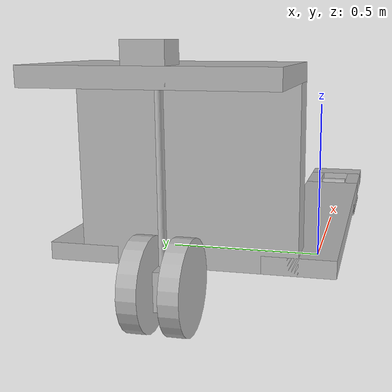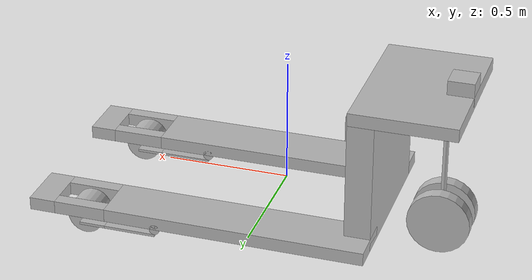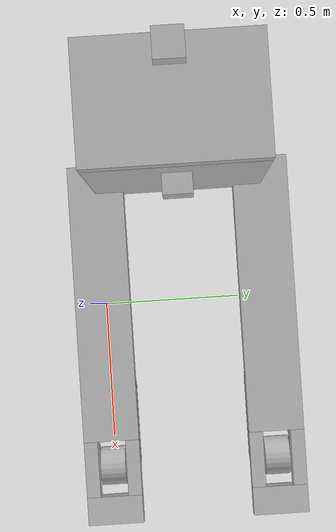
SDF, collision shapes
<?xml version='1.0'?>
<sdf version='1.4'>
  <model name="Jack2">

    <self_collide>false</self_collide>
    <static>false</static>

          <!-- FORK1 START -->
           <link name='fork1'>
            <pose>0 0 0.12 0 0 0</pose>

            <collision name='fork1_collision'>
              <geometry>
                <box>
                  <size>1 .2 .05</size>
                </box>
              </geometry>
            </collision>

            <visual name='fork1_visual'>
              <geometry>
                <box>
                  <size>1 .2 .05</size>
                </box>
              </geometry>
            </visual>

            <collision name='fork1_holeright_collision'>
        <pose>0.6 0.075 0 0 0 0</pose>
              <geometry>
                <box>
                  <size>0.2 .05 .05</size>
                </box>
              </geometry>
            </collision>

            <visual name='fork1_holeright_visual'>
              <pose>0.6 0.075 0 0 0 0</pose>
              <geometry>
                <box>
                  <size>0.2 .05 .05</size>
                </box>
              </geometry>
            </visual>

            <collision name='fork1_holeleft_collision'>
        <pose>0.6 -0.075 0 0 0 0</pose>
              <geometry>
                <box>
                  <size>0.2 .05 .05</size>
                </box>
              </geometry>
            </collision>

            <visual name='fork1_holeleft_visual'>
              <pose>0.6 -0.075 0 0 0 0</pose>
              <geometry>
                <box>
                  <size>0.2 .05 .05</size>
                </box>
              </geometry>
            </visual>

            <collision name='fork1_end_collision'>
              <pose>0.75 0 0 0 0 0</pose>
              <geometry>
                <box>
                  <size>0.1 .2 .05</size>
                </box>
              </geometry>
            </collision>

            <visual name='fork1_end_visual'>
              <pose>0.75 0 0 0 0 0</pose>
              <geometry>
                <box>
                  <size>0.1 .2 .05</size>
                </box>
              </geometry>
</visual>

          <collision name="fork1_wheelholder_cylinder_collision">
            <pose>0.3 0 -0.0250 0 1.5708 1.5708</pose>
          <geometry>
            <cylinder>
              <radius>.02</radius>
              <length>.2</length>
            </cylinder>
          </geometry>
        </collision>
        <visual name="fork1_wheelholder_cylinder__visual">
          <pose>0.3 0 -0.025 0 1.5708 1.5708</pose>
          <geometry>
            <cylinder>
              <radius>.02</radius>
              <length>.2</length>
            </cylinder>
          </geometry>
        </visual>

      </link>

      <link name='fork1_wheelholder'>
            <pose>0.4 0 0.07 0 0 0</pose>

            <collision name='fork1_wheelholder_collision'>
              <geometry>
                <box>
                  <size>0.20 .2 .01</size>
                </box>
              </geometry>
            </collision>

            <visual name='fork1_wheelholder_visual'>
              <geometry>
                <box>
                  <size>0.20 .2 .01</size>
                </box>
              </geometry>
            </visual>

      <collision name='fork1_wheelholder_holeright_collision'>
        <pose>0.15 0.075 0 0 0 0</pose>
              <geometry>
                <box>
                  <size>0.1 .05 .01</size>
                </box>
              </geometry>
            </collision>

            <visual name='fork1_wheelholder_holeright_visual'>
              <pose>0.15 0.075 0 0 0 0</pose>
              <geometry>
                <box>
                  <size>0.1 .05 .01</size>
                </box>
              </geometry>
            </visual>

            <collision name='fork1_wheelholder_holeleft_collision'>
        <pose>0.15 -0.075 0 0 0 0</pose>
              <geometry>
                <box>
                  <size>0.1 .05 .01</size>
                </box>
              </geometry>
            </collision>

            <visual name='fork1_wheelholder_holeleft_visual'>
              <pose>0.15 -0.075 0 0 0 0</pose>
              <geometry>
                <box>
                  <size>0.1 .05 .01</size>
                </box>
              </geometry>
            </visual>
      </link>

      <link name="fork1_prismatic_cylinder_top">
        <pose>0.48 0 0.09 0 1.5708 1.5708</pose>
        <collision name="fork1_prismatic_cylinder_top_collision">
          <geometry>
            <cylinder>
              <radius>.005</radius>
              <length>.02</length>
            </cylinder>
          </geometry>
        </collision>
        <visual name="fork1_prismatic_cylinder_top_visual">
          <geometry>
            <cylinder>
              <radius>.005</radius>
              <length>.02</length>
            </cylinder>
          </geometry>
        </visual>
      </link>

      <link name="fork1_prismatic_cylinder_bottom">
        <pose>0.48 0 0.08 0 1.5708 1.5708</pose>
        <collision name="ork1_prismatic_cylinder_bottom_collision">
          <geometry>
            <cylinder>
              <radius>.005</radius>
              <length>.02</length>
            </cylinder>
          </geometry>
        </collision>
        <visual name="ork1_prismatic_cylinder_bottom_visual">
          <geometry>
            <cylinder>
              <radius>.005</radius>
              <length>.02</length>
            </cylinder>
          </geometry>
        </visual>
      </link>

        <link name="fork1_wheel">
        <pose>0.60 0 0.07 0 1.5708 1.5708</pose>
        <collision name="fork2_wheel_collision">
          <geometry>
            <cylinder>
              <radius>.07</radius>
              <length>.09</length>
            </cylinder>
          </geometry>
        </collision>
        <visual name="fork2_wheel_visual">
          <geometry>
            <cylinder>
              <radius>.07</radius>
              <length>.09</length>
            </cylinder>
          </geometry>
        </visual>
      </link>

      <joint type="revolute" name="fork1_wheelholder_hinge">
        <pose>-0.1 0 0.005 0 0 0</pose>
        <child>fork1_wheelholder</child>
        <parent>fork1</parent>
        <axis>
          <xyz>0 1 0</xyz>
        </axis>
      </joint>

      <joint type="revolute" name="fork1_prismatic_cylinder_top_hinge">
        <pose>-0 0 0 0 0 0</pose>
        <child>fork1_prismatic_cylinder_top</child>
        <parent>fork1</parent>
        <axis>
          <xyz>0 1 0</xyz>
        </axis>
      </joint>

      <joint type="revolute" name="fork1_prismatic_cylinder_bottom_hinge">
        <pose>-0 0 0 0 0 0</pose>
        <child>fork1_prismatic_cylinder_bottom</child>
        <parent>fork1_wheelholder</parent>
        <axis>
          <xyz>0 1 0</xyz>
        </axis>
      </joint>

      <joint type="revolute" name="fork1_wheel_joint">
        <pose>-0 0 0 0 0 0</pose>
        <child>fork1_wheel</child>
        <parent>fork1_wheelholder</parent>
        <axis>
          <xyz>0 1 0</xyz>
        </axis>
      </joint>

      <joint type="prismatic" name="fork1_prismatic">
        <pose>0 0 -0.01 0 0 0</pose>
        <child>fork1_prismatic_cylinder_top</child>
        <parent>fork1_prismatic_cylinder_bottom</parent>
        <axis>
          <xyz>0 0 1</xyz>
          <limit>
            <upper>0.05</upper>
            <lower>0.0</lower>
            <velocity>0.001</velocity>
          </limit>
        </axis>
      </joint>

      <!-- FORK1 END -->

                <!-- fork2 START -->
           <link name='fork2'>
            <pose>0 0.6 0.12 0 0 0</pose>

            <collision name='fork2_collision'>
              <geometry>
                <box>
                  <size>1 .2 .05</size>
                </box>
              </geometry>
            </collision>

            <visual name='fork2_visual'>
              <geometry>
                <box>
                  <size>1 .2 .05</size>
                </box>
              </geometry>
            </visual>

            <collision name='fork2_holeright_collision'>
        <pose>0.6 0.075 0 0 0 0</pose>
              <geometry>
                <box>
                  <size>0.2 .05 .05</size>
                </box>
              </geometry>
            </collision>

            <visual name='fork2_holeright_visual'>
              <pose>0.6 0.075 0 0 0 0</pose>
              <geometry>
                <box>
                  <size>0.2 .05 .05</size>
                </box>
              </geometry>
            </visual>

            <collision name='fork2_holeleft_collision'>
        <pose>0.6 -0.075 0 0 0 0</pose>
              <geometry>
                <box>
                  <size>0.2 .05 .05</size>
                </box>
              </geometry>
            </collision>

            <visual name='fork2_holeleft_visual'>
              <pose>0.6 -0.075 0 0 0 0</pose>
              <geometry>
                <box>
                  <size>0.2 .05 .05</size>
                </box>
              </geometry>
            </visual>

            <collision name='fork2_end_collision'>
              <pose>0.75 0 0 0 0 0</pose>
              <geometry>
                <box>
                  <size>0.1 .2 .05</size>
                </box>
              </geometry>
            </collision>

            <visual name='fork2_end_visual'>
              <pose>0.75 0 0 0 0 0</pose>
              <geometry>
                <box>
                  <size>0.1 .2 .05</size>
                </box>
              </geometry>
            </visual>

          <collision name="fork2_wheelholder_cylinder_collision">
            <pose>0.3 0 -0.0250 0 1.5708 1.5708</pose>
          <geometry>
            <cylinder>
              <radius>.02</radius>
              <length>.2</length>
            </cylinder>
          </geometry>
        </collision>
        <visual name="fork2_wheelholder_cylinder__visual">
          <pose>0.3 0 -0.025 0 1.5708 1.5708</pose>
          <geometry>
            <cylinder>
              <radius>.02</radius>
              <length>.2</length>
            </cylinder>
          </geometry>
        </visual>

      </link>

      <link name='fork2_wheelholder'>
            <pose>0.4 0.6 0.07 0 0 0</pose>

            <collision name='fork2_wheelholder_collision'>
              <geometry>
                <box>
                  <size>0.20 .2 .01</size>
                </box>
              </geometry>
            </collision>

            <visual name='fork2_wheelholder_visual'>
              <geometry>
                <box>
                  <size>0.20 .2 .01</size>
                </box>
              </geometry>
            </visual>

      <collision name='fork2_wheelholder_holeright_collision'>
        <pose>0.15 0.075 0 0 0 0</pose>
              <geometry>
                <box>
                  <size>0.1 .05 .01</size>
                </box>
              </geometry>
            </collision>

            <visual name='fork2_wheelholder_holeright_visual'>
              <pose>0.15 0.075 0 0 0 0</pose>
              <geometry>
                <box>
                  <size>0.1 .05 .01</size>
                </box>
              </geometry>
            </visual>

            <collision name='fork2_wheelholder_holeleft_collision'>
        <pose>0.15 -0.075 0 0 0 0</pose>
              <geometry>
                <box>
                  <size>0.1 .05 .01</size>
                </box>
              </geometry>
            </collision>

            <visual name='fork2_wheelholder_holeleft_visual'>
              <pose>0.15 -0.075 0 0 0 0</pose>
              <geometry>
                <box>
                  <size>0.1 .05 .01</size>
                </box>
              </geometry>
            </visual>
      </link>

      <link name="fork2_prismatic_cylinder_top">
        <pose>0.48 0.6 0.09 0 1.5708 1.5708</pose>
        <collision name="fork2_prismatic_cylinder_top_collision">
          <geometry>
            <cylinder>
              <radius>.005</radius>
              <length>.02</length>
            </cylinder>
          </geometry>
        </collision>
        <visual name="fork2_prismatic_cylinder_top_visual">
          <geometry>
            <cylinder>
              <radius>.005</radius>
              <length>.02</length>
            </cylinder>
          </geometry>
        </visual>
      </link>

      <link name="fork2_prismatic_cylinder_bottom">
        <pose>0.48 0.6 0.08 0 1.5708 1.5708</pose>
        <collision name="fork2_prismatic_cylinder_bottom_collision">
          <geometry>
            <cylinder>
              <radius>.005</radius>
              <length>.02</length>
            </cylinder>
          </geometry>
        </collision>
        <visual name="fork2_prismatic_cylinder_bottom_visual">
          <geometry>
            <cylinder>
              <radius>.005</radius>
              <length>.02</length>
            </cylinder>
          </geometry>
        </visual>
      </link>

        <link name="fork2_wheel">
        <pose>0.60 0.6 0.07 0 1.5708 1.5708</pose>
        <collision name="fork2_wheel_collision">
          <geometry>
            <cylinder>
              <radius>.07</radius>
              <length>.09</length>
            </cylinder>
          </geometry>
        </collision>
        <visual name="fork2_wheel_visual">
          <geometry>
            <cylinder>
              <radius>.07</radius>
              <length>.09</length>
            </cylinder>
          </geometry>
        </visual>
      </link>

      <joint type="revolute" name="fork2_wheelholder_hinge">
        <pose>-0.1 0 0.005 0 0 0</pose>
        <child>fork2_wheelholder</child>
        <parent>fork2</parent>
        <axis>
          <xyz>0 1 0</xyz>
        </axis>
      </joint>

      <joint type="revolute" name="fork2_prismatic_cylinder_top_hinge">
        <pose>-0 0 0 0 0 0</pose>
        <child>fork2_prismatic_cylinder_top</child>
        <parent>fork2</parent>
        <axis>
          <xyz>0 1 0</xyz>
        </axis>
      </joint>

      <joint type="revolute" name="fork2_prismatic_cylinder_bottom_hinge">
        <pose>-0 0 0 0 0 0</pose>
        <child>fork2_prismatic_cylinder_bottom</child>
        <parent>fork2_wheelholder</parent>
        <axis>
          <xyz>0 1 0</xyz>
        </axis>
      </joint>

      <joint type="revolute" name="fork2_wheel_joint">
        <pose>-0 0 0 0 0 0</pose>
        <child>fork2_wheel</child>
        <parent>fork2_wheelholder</parent>
        <axis>
          <xyz>0 1 0</xyz>
        </axis>
      </joint>

      <joint type="prismatic" name="fork2_prismatic">
        <pose>0 0 -0.01 0 0 0</pose>
        <child>fork2_prismatic_cylinder_top</child>
        <parent>fork2_prismatic_cylinder_bottom</parent>
        <axis>
          <xyz>0 0 1</xyz>
          <limit>
            <upper>0.05</upper>
            <lower>0.0</lower>
            <velocity>0.001</velocity>
          </limit>
        </axis>
      </joint>

      <!-- fork2 END -->

      <link name='mid_prismatic'>
        <pose>-0.45 0.3 0.345 0 0 0</pose>
        <collision name='mid_prismatic_collision'>
            <pose>0.0 0 0 0 0 0</pose>
              <geometry>
                <box>
                  <size>0.01 .01 .01</size>
                </box>
              </geometry>
            </collision>

            <visual name='mid_prismatic_visual'>
              <pose>-0.0 0 0 0 0 0</pose>
              <geometry>
                <box>
                  <size>0.01 .01 .01</size>
                </box>
              </geometry>
            </visual>
          </link>

      <!-- mid START -->
      <link name='mid'>
            <pose>-0.45 0.3 0.345 0 0 0</pose>

            <collision name='mid_wall_collision'>
              <geometry>
                <box>
                  <size>0.1 .6 .5</size>
                </box>
              </geometry>
            </collision>

            <visual name='mid_wall_visual'>
              <geometry>
                <box>
                  <size>0.1 .6 .5</size>
                </box>
              </geometry>
            </visual>
            <collision name='mid_wall_distance_collision'>
              <pose>0.07 0 0.1 0 0 0</pose>
              <geometry>
                <box>
                  <size>0.1 .1 .1</size>
                </box>
              </geometry>
            </collision>

            <visual name='mid_wall_distance_visual'>
              <pose>0.07 0 0.1 0 0 0</pose>
              <geometry>
                <box>
                  <size>0.1 .1 .1</size>
                </box>
              </geometry>
            </visual>

          <collision name='mid_top_collision'>
            <pose>-0.15 0 0.275 0 0 0</pose>
              <geometry>
                <box>
                  <size>0.4 .6 .05</size>
                </box>
              </geometry>
            </collision>

            <visual name='mid_top_visual'>
              <pose>-0.15 0 0.275 0 0 0</pose>
              <geometry>
                <box>
                  <size>0.4 .6 .05</size>
                </box>
              </geometry>
            </visual>
          </link>

          <!-- mid END -->

          <!-- Differential START -->

          <link name='differential_body'>
            <pose>-0.7 0.3 0.12 0 0 0</pose>

            <collision name='differential_body_collision'>
              <geometry>
                <box>
                  <size>0.1 .02 .1</size>
                </box>
              </geometry>
            </collision>

            <visual name='differential_body_visual'>
              <geometry>
                <box>
                  <size>0.1 .02 .1</size>
                </box>
              </geometry>
            </visual>
          </link>

        <link name='differential_cylinder'>
            <pose>-0.7 0.3 0.3825 0 0 0</pose>

        <collision name="differential_cylinder_collision">
          <geometry>
            <cylinder>
              <radius>.01</radius>
              <length>.425</length>
            </cylinder>
          </geometry>
        </collision>
        <visual name="differential_cylinder_visual">
          <geometry>
            <cylinder>
              <radius>.01</radius>
              <length>.425</length>
            </cylinder>
          </geometry>
        </visual>
          </link>

          <link name='differential_wheel1'>
            <pose>-0.7 0.35 0.12 0 1.5708 1.5708</pose>

        <collision name="differential_wheel1_collision">
          <geometry>
            <cylinder>
              <radius>.12</radius>
              <length>.05</length>
            </cylinder>
          </geometry>
        </collision>
        <visual name="differential_wheel1_visual">
          <geometry>
            <cylinder>
              <radius>.12</radius>
              <length>.05</length>
            </cylinder>
          </geometry>
        </visual>
          </link>

          <link name='differential_wheel2'>
            <pose>-0.7 0.25 0.12 0 1.5708 1.5708</pose>

        <collision name="differential_wheel2_collision">
          <geometry>
            <cylinder>
              <radius>.12</radius>
              <length>.05</length>
            </cylinder>
          </geometry>
        </collision>
        <visual name="differential_wheel2_visual">
          <geometry>
            <cylinder>
              <radius>.12</radius>
              <length>.05</length>
            </cylinder>
          </geometry>
        </visual>
          </link>

          <!-- Differential END -->

          <!-- Additional Joints -->

      <joint type="fixed" name="fix_fork1_mid">
        <pose>-0 0 0 0 0 0</pose>
        <child>mid</child>
        <parent>fork1</parent>
      </joint>

              <joint type="fixed" name="fix_fork2_mid">
        <pose>-0 0 0 0 0 0</pose>
        <child>mid</child>
        <parent>fork2</parent>
      </joint>

                    <joint type="fixed" name="fix_diff_body_cylinder">
        <pose>-0 0 0 0 0 0</pose>
        <child>differential_cylinder</child>
        <parent>differential_body</parent>
      </joint>

                          <joint type="fixed" name="fix_camera">
        <pose>-0 0 0 0 0 0</pose>
        <child>camera_link</child>
        <parent>mid</parent>
      </joint>

            <joint type="revolute" name="differentialcylinder_mid_z">
        <pose>0 0 0 0 0 0</pose>
        <child>differential_cylinder</child>
        <parent>mid_prismatic</parent>
        <axis>
          <xyz>0 0 1</xyz>
            <limit>
              <effort>10000</effort>
          </limit>
        </axis>
      </joint>

            <joint type="prismatic" name="mid_prismatic_joint">
        <pose>0 0 0 0 0 0</pose>
        <child>mid</child>
        <parent>mid_prismatic</parent>
        <axis>
          <xyz>0 0 1</xyz>
          <limit>
            <upper>0.08</upper>
            <lower>0</lower>
            <velocity>0.0001</velocity>
          </limit>
        </axis>
      </joint>

            <joint type="revolute" name="differential_wheel1_joint">
        <pose>0 0 0 0 0 0</pose>
        <child>differential_wheel1</child>
        <parent>differential_body</parent>
        <axis>
          <xyz>0 1 0</xyz>
        </axis>
      </joint>

                  <joint type="revolute" name="differential_wheel2_joint">
        <pose>0 0 0 0 0 0</pose>
        <child>differential_wheel2</child>
        <parent>differential_body</parent>
        <axis>
          <xyz>0 1 0</xyz>
        </axis>
      </joint>

      <!-- SENSORS -->

    <link name="link">
      <pose>-0.38 0.3 0.345 0 0 0</pose>
      <inertial>
        <mass>0.1</mass>
      </inertial>
      <visual name="visual">
        <geometry>
          <mesh>
            <uri>model://hokuyo/meshes/hokuyo.dae</uri>
          </mesh>
        </geometry>
      </visual>
      <collision name="collision-base">
        <pose>0 0 -0.0145 0 0 0</pose>
        <geometry>
          <box>
            <size>0.05 0.05 0.041</size>
          </box>
        </geometry>
      </collision>
      <collision name="collision-top">
        <pose>0 0 0.0205 0 0 0</pose>
        <geometry>
          <cylinder>
            <radius>0.021</radius>
            <length>0.029</length>
          </cylinder>
        </geometry>
      </collision>
      <sensor name="laser" type="ray">
        <pose>0.01 0 0.0175 0 -0 0</pose>
        <ray>
          <scan>
            <horizontal>
              <samples>640</samples>
              <resolution>1</resolution>
              <min_angle>-0.26889</min_angle>
              <max_angle>0.268899</max_angle>
            </horizontal>
          </scan>
          <range>
            <min>0.02</min>
            <max>0.4</max>
            <resolution>0.01</resolution>
          </range>
        </ray>
        <plugin name="laser" filename="libRayPlugin.so" />
        <always_on>1</always_on>
        <update_rate>30</update_rate>
        <visualize>true</visualize>
      </sensor>
    </link>

    <link name="camera_link">
      <pose>-0.75 0.3 0.65 0 0 3.141592</pose>
      <inertial>
        <mass>0.1</mass>
        <inertia>
          <ixx>0.000166667</ixx>
          <iyy>0.000166667</iyy>
          <izz>0.000166667</izz>
        </inertia>
      </inertial>
      <collision name="camera_collision">
        <geometry>
          <box>
            <size>0.1 0.1 0.1</size>
          </box>
        </geometry>
      </collision>
      <visual name="camera_visual">
        <geometry>
          <box>
            <size>0.1 0.1 0.1</size>
          </box>
        </geometry>
      </visual>
      <sensor name="camera" type="camera">
        <camera>
          <horizontal_fov>1.047</horizontal_fov>
          <image>
            <width>320</width>
            <height>240</height>
          </image>
          <clip>
            <near>0.1</near>
            <far>100</far>
          </clip>
        </camera>
        <always_on>1</always_on>
        <update_rate>30</update_rate>
        <visualize>true</visualize>
      </sensor>
    </link>

    <joint name="hokuyo_joint" type="revolute">
      <child>link</child>
      <parent>mid</parent>
      <axis>
        <xyz>0 0 1</xyz>
        <limit>
          <upper>0</upper>
          <lower>0</lower>
        </limit>
      </axis>
    </joint>

    <plugin name="prismatic_plugin" filename="libprismatic_plugin.so"/>
    <plugin name="keyboard_plugin" filename="libkeyboard_plugin.so"/>

  </model>
</sdf>
